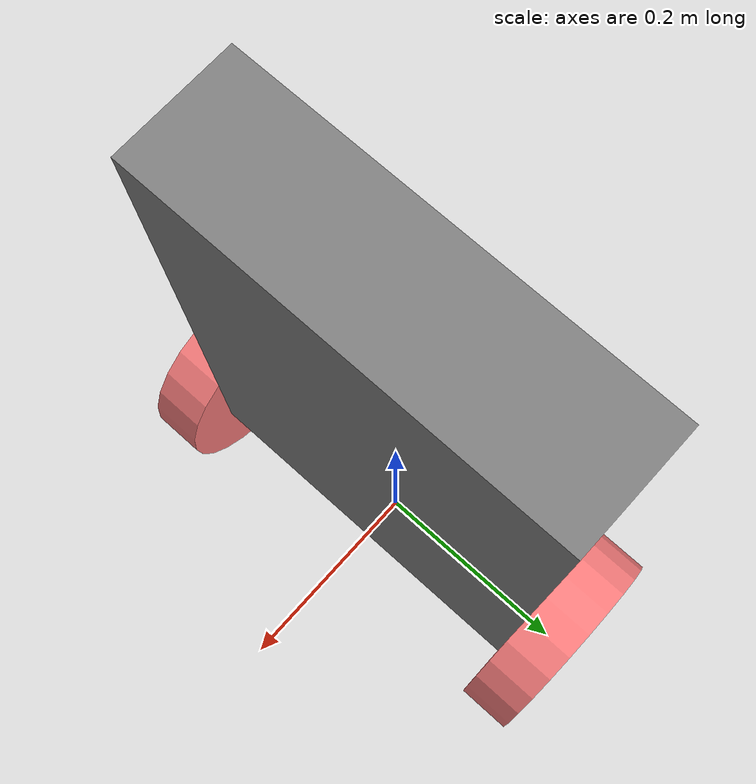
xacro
<?xml version="1.0"?>
<robot name="ip_robot" xmlns:xacro="http://ros.org/wiki/xacro">
    <xacro:arg name="robot_name" default="ip_robot"/>
    <xacro:include filename="$(find inverted_pendulum_robot)/xacro/move_macro.xacro"/>
    <xacro:include filename="$(find inverted_pendulum_robot)/xacro/imu_macro.xacro"/>

    <link name="base_link"/>

    <xacro:body_macro parent="base_link"/>
    <xacro:wheel_macro prefix="left_wheel" parent="base_link" xyz="0 0.2 0.05"/>
    <xacro:wheel_macro prefix="right_wheel" parent="base_link" xyz="0 -0.2 0.05"/>
    <xacro:imu_macro prefix="imu" parent="base_link" xyz="0 0 0.55" robot_name="$(arg robot_name)"/>

    <gazebo>
        <plugin name="differential_drive_controller" filename="libgazebo_ros_diff_drive.so">
            <leftJoint>left_wheel_joint</leftJoint>
            <rightJoint>right_wheel_joint</rightJoint>
            <robotBaseFrame>/base_link</robotBaseFrame>
            <wheelSeparation>0.4</wheelSeparation>
            <wheelDiameter>0.1</wheelDiameter>
            <publishWheelJointState>true</publishWheelJointState>
        </plugin>
    </gazebo>
</robot>

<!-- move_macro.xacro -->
<robot name="ip_robot" xmlns:xacro="http://ros.org/wiki/xacro">
    <material name="gray">
        <color rgba="0.5 0.5 0.5 1.0"/>
    </material>
    <material name="red">
        <color rgba="1.0 0.5 0.5 1.0"/>
    </material>

    <xacro:macro name="wheel_macro" params="parent prefix xyz">
        <joint name="${prefix}_joint" type="continuous">
            <origin xyz="${xyz}" rpy="${radians(-90)} 0 0"/>
            <parent link="${parent}"/>
            <child link="${prefix}_link"/>
            <axis xyz="0 0 1"/>
            <limit velocity="12.0" effort="0.4"/>
            <dynamics damping="0.1"/>
        </joint>
        <transmission name="${prefix}_trans" type="SimpleTransmission">
            <type>transmission_interface/SimpleTransmission</type>
            <actuator name="${prefix}_motor">
                <hardwareInterface>hardware_interface/VelocityJointInterface</hardwareInterface>
                <mechanicalReduction>1</mechanicalReduction>
            </actuator>
            <joint name="${prefix}_joint">
                <hardwareInterface>hardware_interface/VelocityJointInterface</hardwareInterface>
            </joint>
        </transmission>
        <link name="${prefix}_link">
            <inertial>
                <origin xyz="0 0 0" rpy="0 0 0"/>
                <mass value="0.1"/>
                <inertia ixx="0.0001" ixy="0.0" ixz="0.0" iyy="0.0001" iyz="0.0" izz="0.0001"/>
            </inertial>
            <visual>
                <geometry>
                    <cylinder radius="0.10" length="0.05"/>
                </geometry>
                <material name="red"/>
            </visual>
            <collision>
                <geometry>
                    <cylinder radius="0.10" length="0.05"/>
                </geometry>
            </collision>
        </link>
        <gazebo reference="${prefix}_link">
            <material>Gazebo/Red</material>
            <mu1 value="2.5"/>
            <mu2 value="2.5"/>
            <kp value="50000"/>
            <kd value="10"/>
        </gazebo>
    </xacro:macro>

    <xacro:macro name="body_macro" params="parent">
        <joint name="body_joint" type="fixed">
            <parent link="base_link"/>
            <child link="body_link"/>
            <origin xyz="0 0 0.3" rpy="0 0 0"/>
        </joint>
        <link name="body_link">
            <inertial>
                <origin xyz="0 0 0" rpy="0 0 0"/>
                <mass value="1.0"/>
                <inertia ixx="0.001" ixy="0.0" ixz="0.0" iyy="0.001" iyz="0.0" izz="0.001"/>
            </inertial>
            <visual>
                <origin xyz="0 0 0" rpy="0 0 0"/>
                <geometry>
                    <box size="0.1 0.35 0.5"/>
                </geometry>
                <material name="gray"/>
            </visual>
            <collision>
                <origin xyz="0 0 0" rpy="0 0 0"/>
                <geometry>
                    <box size="0.1 0.2 0.5"/>
                </geometry>
            </collision>
        </link>
        <gazebo reference="body_link">
            <material>Gazebo/Gray</material>
        </gazebo>
    </xacro:macro>
</robot>

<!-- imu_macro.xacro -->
<robot name="dtw_robot" xmlns:xacro="http://ros.org/wiki/xacro">
  <xacro:macro name="imu_macro" params="parent prefix xyz robot_name">
    <joint name="imu_joint" type="fixed">
      <parent link="${parent}"/>
      <child  link="${prefix}_link"/>
      <origin xyz="${xyz}" rpy="0 0 0"/>
    </joint>
    <link name="${prefix}_link"/>
    <gazebo reference="${prefix}_link">
      <gravity>true</gravity>
      <sensor name="imu_sensor" type="imu">
        <always_on>true</always_on>
        <update_rate>100</update_rate>
        <visualize>true</visualize>
        <topic>data</topic>
        <plugin filename="libgazebo_ros_imu_sensor.so" name="imu_plugin">
          <topicName>${prefix}/data</topicName>
          <bodyName>${prefix}_link</bodyName>
          <updateRateHZ>10.0</updateRateHZ>
          <gaussianNoise>0.0</gaussianNoise>
          <xyzOffset>0 0 0</xyzOffset>
          <rpyOffset>0 0 0</rpyOffset>
          <frameName>${robot_name}/${prefix}_link</frameName>
        </plugin>
        <pose>0 0 0 0 0 0</pose>
      </sensor>
    </gazebo>
  </xacro:macro>
</robot>
